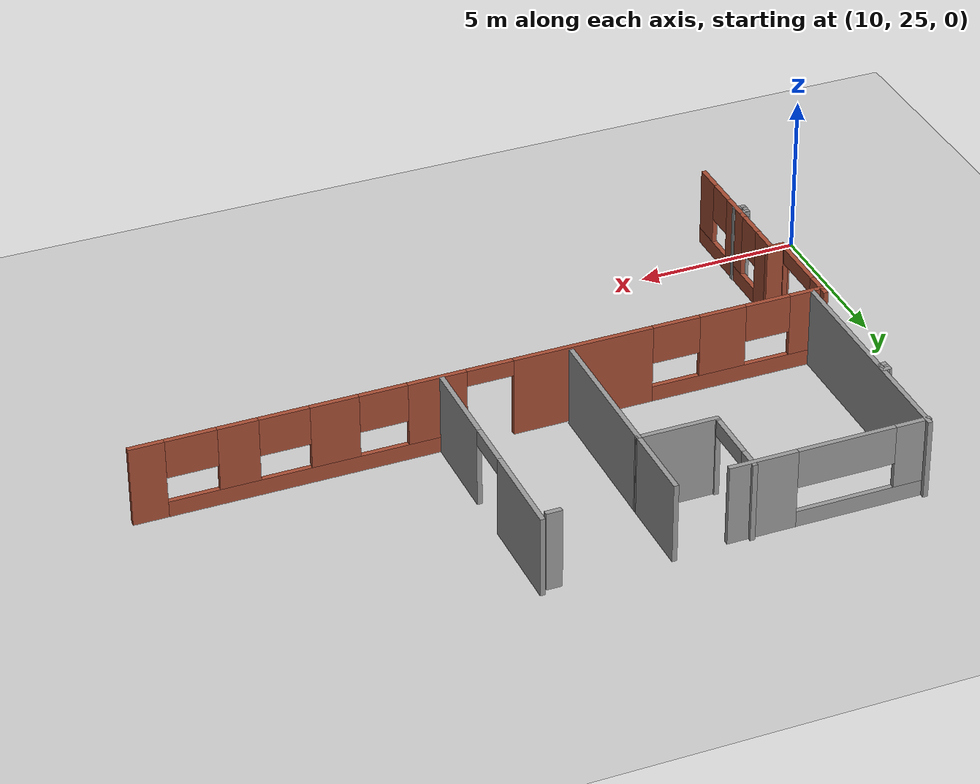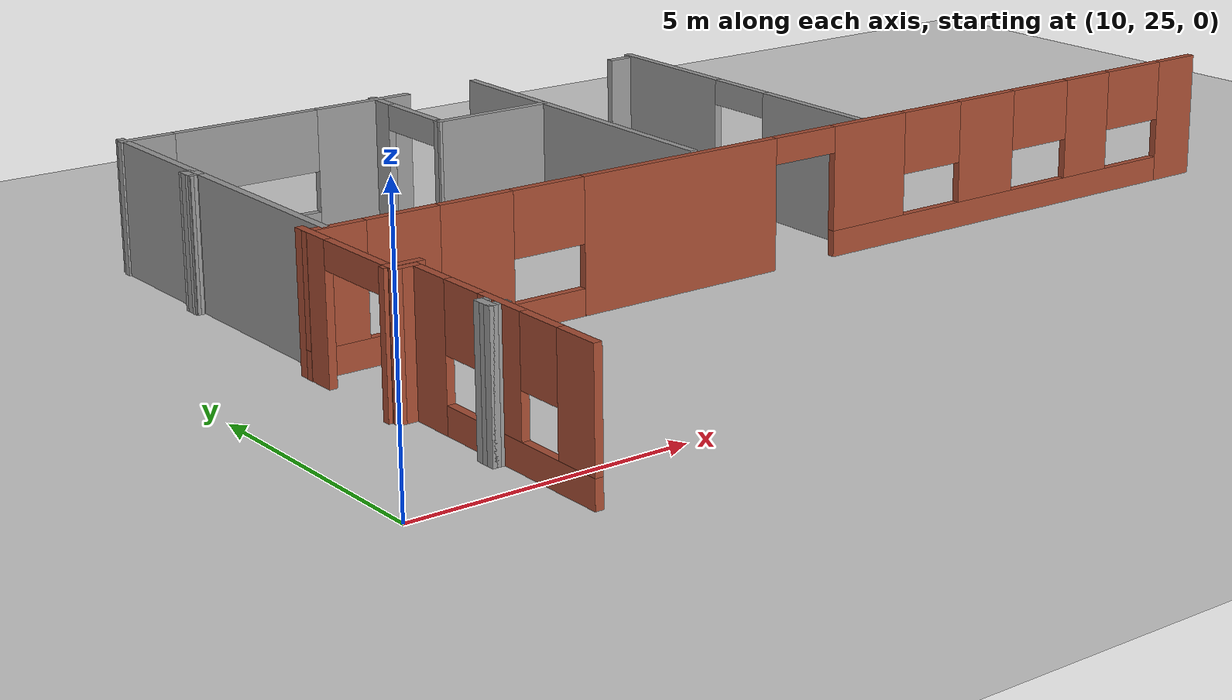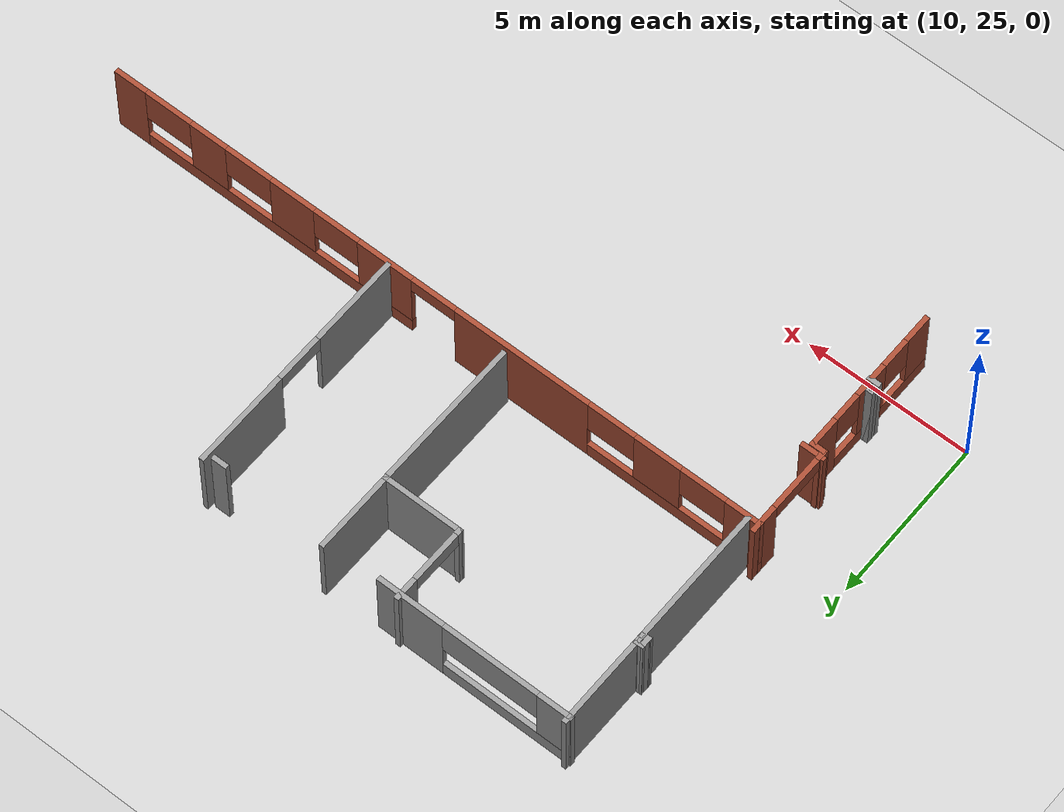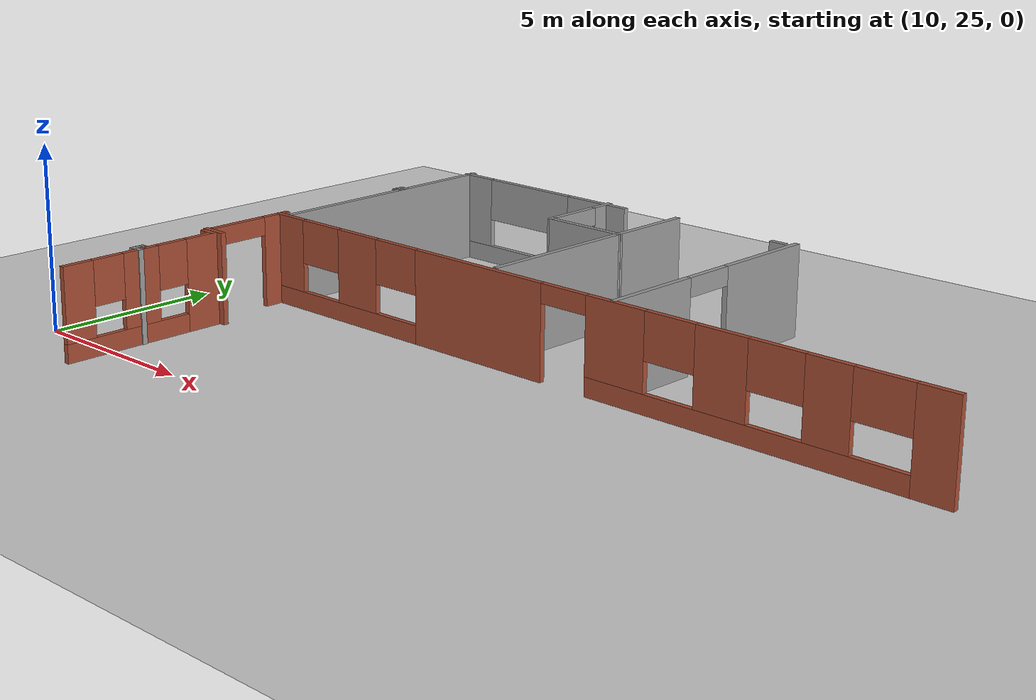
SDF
<sdf version="1.6">
 <world name="default">
  <model name="ground_plane">
   <static>1</static>
   <link name="link">
    <collision name="collision">
     <geometry><plane><normal>0 0 1</normal><size>100 100</size></plane></geometry>
     <surface><friction><ode><mu>100</mu><mu2>50</mu2></ode></friction></surface>
    </collision>
    <visual name="visual">
     <cast_shadows>0</cast_shadows>
     <geometry><plane><normal>0 0 1</normal><size>100 100</size></plane></geometry>
     <material>
      <script><uri>file://media/materials/scripts/gazebo.material</uri><name>Gazebo/Grey</name></script>
     </material>
    </visual>
   </link>
  </model>
  <model name="CVSSP">
   <pose>23.8714 24.094 0 0 -0 0</pose>
   <link name="Wall_17">
    <collision name="Wall_17_Collision">
     <geometry><box><size>7.25 0.15 2.5</size></box></geometry>
     <pose>0 0 1.25 0 -0 0</pose>
    </collision>
    <visual name="Wall_17_Visual">
     <pose>0 0 1.25 0 -0 0</pose>
     <geometry><box><size>7.25 0.15 2.5</size></box></geometry>
     <material>
      <script><uri>file://media/materials/scripts/gazebo.material</uri><name>Gazebo/Grey</name></script>
      <ambient>0.588235 0.588235 0.588235 1</ambient>
     </material>
    </visual>
    <pose>-11.4873 10.485 0 0 0 -1.5708</pose>
   </link>
   <link name="Wall_21">
    <pose>-6.21845 12.8269 0 0 0 -1.57055</pose>
    <visual name="Wall_21_Visual_0">
     <pose>-0.893143 0 1.25 0 -0 0</pose>
     <geometry><box><size>0.719046 0.15 2.5</size></box></geometry>
     <material>
      <script><uri>file://media/materials/scripts/gazebo.material</uri><name>Gazebo/Grey</name></script>
      <ambient>0.588235 0.588235 0.588235 1</ambient>
     </material>
    </visual>
    <collision name="Wall_21_Collision_0">
     <geometry><box><size>0.719046 0.15 2.5</size></box></geometry>
     <pose>-0.893143 0 1.25 0 -0 0</pose>
    </collision>
    <visual name="Wall_21_Visual_1">
     <pose>1.15058 0 1.25 0 -0 0</pose>
     <geometry><box><size>0.204165 0.15 2.5</size></box></geometry>
     <material>
      <script><uri>file://media/materials/scripts/gazebo.material</uri><name>Gazebo/Grey</name></script>
      <ambient>0.588235 0.588235 0.588235 1</ambient>
     </material>
    </visual>
    <collision name="Wall_21_Collision_1">
     <geometry><box><size>0.204165 0.15 2.5</size></box></geometry>
     <pose>1.15058 0 1.25 0 -0 0</pose>
    </collision>
    <visual name="Wall_21_Visual_2">
     <pose>0.257441 0 2.25 0 -0 0</pose>
     <geometry><box><size>1.58212 0.15 0.5</size></box></geometry>
     <material>
      <script><uri>file://media/materials/scripts/gazebo.material</uri><name>Gazebo/Grey</name></script>
      <ambient>0.588235 0.588235 0.588235 1</ambient>
     </material>
    </visual>
    <collision name="Wall_21_Collision_2">
     <geometry><box><size>1.58212 0.15 0.5</size></box></geometry>
     <pose>0.257441 0 2.25 0 -0 0</pose>
    </collision>
   </link>
   <link name="Wall_24">
    <collision name="Wall_24_Collision">
     <geometry><box><size>2.49412 0.15 2.5</size></box></geometry>
     <pose>0 0 1.25 0 -0 0</pose>
    </collision>
    <visual name="Wall_24_Visual">
     <pose>0 0 1.25 0 -0 0</pose>
     <geometry><box><size>2.49412 0.15 2.5</size></box></geometry>
     <material>
      <script><uri>file://media/materials/scripts/gazebo.material</uri><name>Gazebo/Grey</name></script>
      <ambient>0.588235 0.588235 0.588235 1</ambient>
     </material>
    </visual>
    <pose>-5.0461 11.6485 0 0 0 -0.000618</pose>
   </link>
   <link name="Wall_25">
    <collision name="Wall_25_Collision">
     <geometry><box><size>2.54698 0.15 2.5</size></box></geometry>
     <pose>0 0 1.25 0 -0 0</pose>
    </collision>
    <visual name="Wall_25_Visual">
     <pose>0 0 1.25 0 -0 0</pose>
     <geometry><box><size>2.54698 0.15 2.5</size></box></geometry>
     <material>
      <script><uri>file://media/materials/scripts/gazebo.material</uri><name>Gazebo/Grey</name></script>
      <ambient>0.588235 0.588235 0.588235 1</ambient>
     </material>
    </visual>
    <pose>-3.87405 12.8463 0 0 -0 1.5708</pose>
   </link>
   <link name="Wall_27">
    <collision name="Wall_27_Collision">
     <geometry><box><size>4.69046 0.15 2.5</size></box></geometry>
     <pose>0 0 1.25 0 -0 0</pose>
    </collision>
    <visual name="Wall_27_Visual">
     <pose>0 0 1.25 0 -0 0</pose>
     <geometry><box><size>4.69046 0.15 2.5</size></box></geometry>
     <material>
      <script><uri>file://media/materials/scripts/gazebo.material</uri><name>Gazebo/Grey</name></script>
      <ambient>0.588235 0.588235 0.588235 1</ambient>
     </material>
    </visual>
    <pose>-3.88025 9.37755 0 0 0 -1.57353</pose>
   </link>
   <link name="Wall_29">
    <pose>-0.023055 10.5087 0 0 0 -1.5708</pose>
    <visual name="Wall_29_Visual_0">
     <pose>-2.1277 0 1.25 0 -0 0</pose>
     <geometry><box><size>2.99461 0.15 2.5</size></box></geometry>
     <material>
      <script><uri>file://media/materials/scripts/gazebo.material</uri><name>Gazebo/Grey</name></script>
      <ambient>0.588235 0.588235 0.588235 1</ambient>
     </material>
    </visual>
    <collision name="Wall_29_Collision_0">
     <geometry><box><size>2.99461 0.15 2.5</size></box></geometry>
     <pose>-2.1277 0 1.25 0 -0 0</pose>
    </collision>
    <visual name="Wall_29_Visual_1">
     <pose>2.22714 0 1.25 0 -0 0</pose>
     <geometry><box><size>2.79571 0.15 2.5</size></box></geometry>
     <material>
      <script><uri>file://media/materials/scripts/gazebo.material</uri><name>Gazebo/Grey</name></script>
      <ambient>0.588235 0.588235 0.588235 1</ambient>
     </material>
    </visual>
    <collision name="Wall_29_Collision_1">
     <geometry><box><size>2.79571 0.15 2.5</size></box></geometry>
     <pose>2.22714 0 1.25 0 -0 0</pose>
    </collision>
    <visual name="Wall_29_Visual_2">
     <pose>0.099447 0 2.25 0 -0 0</pose>
     <geometry><box><size>1.45968 0.15 0.5</size></box></geometry>
     <material>
      <script><uri>file://media/materials/scripts/gazebo.material</uri><name>Gazebo/Grey</name></script>
      <ambient>0.588235 0.588235 0.588235 1</ambient>
     </material>
    </visual>
    <collision name="Wall_29_Collision_2">
     <geometry><box><size>1.45968 0.15 0.5</size></box></geometry>
     <pose>0.099447 0 2.25 0 -0 0</pose>
    </collision>
   </link>
   <link name="Wall_387">
    <pose>-11.8031 5.68021 0 0 -0 1.5708</pose>
    <visual name="Wall_387_Visual_0">
     <pose>-1.29725 0 1.25 0 -0 0</pose>
     <geometry><box><size>0.353915 0.15 2.5</size></box></geometry>
     <material>
      <script><uri>file://media/materials/scripts/gazebo.material</uri><name>Gazebo/Bricks</name></script>
      <ambient>1 1 1 1</ambient>
     </material>
    </visual>
    <collision name="Wall_387_Collision_0">
     <geometry><box><size>0.353915 0.15 2.5</size></box></geometry>
     <pose>-1.29725 0 1.25 0 -0 0</pose>
    </collision>
    <visual name="Wall_387_Visual_1">
     <pose>1.03174 0 1.25 0 -0 0</pose>
     <geometry><box><size>0.884924 0.15 2.5</size></box></geometry>
     <material>
      <script><uri>file://media/materials/scripts/gazebo.material</uri><name>Gazebo/Bricks</name></script>
      <ambient>1 1 1 1</ambient>
     </material>
    </visual>
    <collision name="Wall_387_Collision_1">
     <geometry><box><size>0.884924 0.15 2.5</size></box></geometry>
     <pose>1.03174 0 1.25 0 -0 0</pose>
    </collision>
    <visual name="Wall_387_Visual_2">
     <pose>-0.265504 0 2.25 0 -0 0</pose>
     <geometry><box><size>1.70957 0.15 0.5</size></box></geometry>
     <material>
      <script><uri>file://media/materials/scripts/gazebo.material</uri><name>Gazebo/Bricks</name></script>
      <ambient>1 1 1 1</ambient>
     </material>
    </visual>
    <collision name="Wall_387_Collision_2">
     <geometry><box><size>1.70957 0.15 0.5</size></box></geometry>
     <pose>-0.265504 0 2.25 0 -0 0</pose>
    </collision>
   </link>
   <link name="Wall_437">
    <collision name="Wall_437_Collision">
     <geometry><box><size>0.5 0.15 2.5</size></box></geometry>
     <pose>0 0 1.25 0 -0 0</pose>
    </collision>
    <visual name="Wall_437_Visual">
     <pose>0 0 1.25 0 -0 0</pose>
     <geometry><box><size>0.5 0.15 2.5</size></box></geometry>
     <material>
      <script><uri>file://media/materials/scripts/gazebo.material</uri><name>Gazebo/Bricks</name></script>
      <ambient>1 1 1 1</ambient>
     </material>
    </visual>
    <pose>-11.6281 4.28101 0 0 -0 0</pose>
   </link>
   <link name="Wall_438">
    <pose>-11.4531 1.98101 0 0 0 -1.5708</pose>
    <visual name="Wall_438_Visual_0">
     <pose>-1.88418 0 1.25 0 -0 0</pose>
     <geometry><box><size>0.981638 0.15 2.5</size></box></geometry>
     <material>
      <script><uri>file://media/materials/scripts/gazebo.material</uri><name>Gazebo/Bricks</name></script>
      <ambient>1 1 1 1</ambient>
     </material>
    </visual>
    <collision name="Wall_438_Collision_0">
     <geometry><box><size>0.981638 0.15 2.5</size></box></geometry>
     <pose>-1.88418 0 1.25 0 -0 0</pose>
    </collision>
    <visual name="Wall_438_Visual_1">
     <pose>0.490819 0 0.25 0 -0 0</pose>
     <geometry><box><size>3.76836 0.15 0.5</size></box></geometry>
     <material>
      <script><uri>file://media/materials/scripts/gazebo.material</uri><name>Gazebo/Bricks</name></script>
      <ambient>1 1 1 1</ambient>
     </material>
    </visual>
    <collision name="Wall_438_Collision_1">
     <geometry><box><size>3.76836 0.15 0.5</size></box></geometry>
     <pose>0.490819 0 0.25 0 -0 0</pose>
    </collision>
    <visual name="Wall_438_Visual_2">
     <pose>0.039676 0 1.5 0 -0 0</pose>
     <geometry><box><size>1.08359 0.15 2</size></box></geometry>
     <material>
      <script><uri>file://media/materials/scripts/gazebo.material</uri><name>Gazebo/Bricks</name></script>
      <ambient>1 1 1 1</ambient>
     </material>
    </visual>
    <collision name="Wall_438_Collision_2">
     <geometry><box><size>1.08359 0.15 2</size></box></geometry>
     <pose>0.039676 0 1.5 0 -0 0</pose>
    </collision>
    <visual name="Wall_438_Visual_3">
     <pose>1.93363 0 1.5 0 -0 0</pose>
     <geometry><box><size>0.882734 0.15 2</size></box></geometry>
     <material>
      <script><uri>file://media/materials/scripts/gazebo.material</uri><name>Gazebo/Bricks</name></script>
      <ambient>1 1 1 1</ambient>
     </material>
    </visual>
    <collision name="Wall_438_Collision_3">
     <geometry><box><size>0.882734 0.15 2</size></box></geometry>
     <pose>1.93363 0 1.5 0 -0 0</pose>
    </collision>
    <visual name="Wall_438_Visual_4">
     <pose>-0.94774 0 1.9 0 -0 0</pose>
     <geometry><box><size>0.891243 0.15 1.2</size></box></geometry>
     <material>
      <script><uri>file://media/materials/scripts/gazebo.material</uri><name>Gazebo/Bricks</name></script>
      <ambient>1 1 1 1</ambient>
     </material>
    </visual>
    <collision name="Wall_438_Collision_4">
     <geometry><box><size>0.891243 0.15 1.2</size></box></geometry>
     <pose>-0.94774 0 1.9 0 -0 0</pose>
    </collision>
    <visual name="Wall_438_Visual_5">
     <pose>1.03687 0 1.9 0 -0 0</pose>
     <geometry><box><size>0.910795 0.15 1.2</size></box></geometry>
     <material>
      <script><uri>file://media/materials/scripts/gazebo.material</uri><name>Gazebo/Bricks</name></script>
      <ambient>1 1 1 1</ambient>
     </material>
    </visual>
    <collision name="Wall_438_Collision_5">
     <geometry><box><size>0.910795 0.15 1.2</size></box></geometry>
     <pose>1.03687 0 1.9 0 -0 0</pose>
    </collision>
   </link>
   <link name="Wall_46">
    <pose>-1.40579 6.86917 0 0 -0 3.14155</pose>
    <visual name="Wall_46_Visual_0">
     <pose>-9.95927 0 1.25 0 -0 0</pose>
     <geometry><box><size>1.03804 0.15 2.5</size></box></geometry>
     <material>
      <script><uri>file://media/materials/scripts/gazebo.material</uri><name>Gazebo/Bricks</name></script>
      <ambient>1 1 1 1</ambient>
     </material>
    </visual>
    <collision name="Wall_46_Collision_0">
     <geometry><box><size>1.03804 0.15 2.5</size></box></geometry>
     <pose>-9.95927 0 1.25 0 -0 0</pose>
    </collision>
    <visual name="Wall_46_Visual_1">
     <pose>2.91124 0 1.25 0 -0 0</pose>
     <geometry><box><size>4.28444 0.15 2.5</size></box></geometry>
     <material>
      <script><uri>file://media/materials/scripts/gazebo.material</uri><name>Gazebo/Bricks</name></script>
      <ambient>1 1 1 1</ambient>
     </material>
    </visual>
    <collision name="Wall_46_Collision_1">
     <geometry><box><size>4.28444 0.15 2.5</size></box></geometry>
     <pose>2.91124 0 1.25 0 -0 0</pose>
    </collision>
    <visual name="Wall_46_Visual_2">
     <pose>-5.03718 0 0.25 0 -0 0</pose>
     <geometry><box><size>8.80612 0.15 0.5</size></box></geometry>
     <material>
      <script><uri>file://media/materials/scripts/gazebo.material</uri><name>Gazebo/Bricks</name></script>
      <ambient>1 1 1 1</ambient>
     </material>
    </visual>
    <collision name="Wall_46_Collision_2">
     <geometry><box><size>8.80612 0.15 0.5</size></box></geometry>
     <pose>-5.03718 0 0.25 0 -0 0</pose>
    </collision>
    <visual name="Wall_46_Visual_3">
     <pose>7.76588 0 0.25 0 -0 0</pose>
     <geometry><box><size>5.42482 0.15 0.5</size></box></geometry>
     <material>
      <script><uri>file://media/materials/scripts/gazebo.material</uri><name>Gazebo/Bricks</name></script>
      <ambient>1 1 1 1</ambient>
     </material>
    </visual>
    <collision name="Wall_46_Collision_3">
     <geometry><box><size>5.42482 0.15 0.5</size></box></geometry>
     <pose>7.76588 0 0.25 0 -0 0</pose>
    </collision>
    <visual name="Wall_46_Visual_4">
     <pose>-7.35036 0 1.5 0 -0 0</pose>
     <geometry><box><size>1.1891 0.15 2</size></box></geometry>
     <material>
      <script><uri>file://media/materials/scripts/gazebo.material</uri><name>Gazebo/Bricks</name></script>
      <ambient>1 1 1 1</ambient>
     </material>
    </visual>
    <collision name="Wall_46_Collision_4">
     <geometry><box><size>1.1891 0.15 2</size></box></geometry>
     <pose>-7.35036 0 1.5 0 -0 0</pose>
    </collision>
    <visual name="Wall_46_Visual_5">
     <pose>-4.55193 0 1.5 0 -0 0</pose>
     <geometry><box><size>1.43988 0.15 2</size></box></geometry>
     <material>
      <script><uri>file://media/materials/scripts/gazebo.material</uri><name>Gazebo/Bricks</name></script>
      <ambient>1 1 1 1</ambient>
     </material>
    </visual>
    <collision name="Wall_46_Collision_5">
     <geometry><box><size>1.43988 0.15 2</size></box></geometry>
     <pose>-4.55193 0 1.5 0 -0 0</pose>
    </collision>
    <visual name="Wall_46_Visual_6">
     <pose>-1.51388 0 1.5 0 -0 0</pose>
     <geometry><box><size>1.75953 0.15 2</size></box></geometry>
     <material>
      <script><uri>file://media/materials/scripts/gazebo.material</uri><name>Gazebo/Bricks</name></script>
      <ambient>1 1 1 1</ambient>
     </material>
    </visual>
    <collision name="Wall_46_Collision_6">
     <geometry><box><size>1.75953 0.15 2</size></box></geometry>
     <pose>-1.51388 0 1.5 0 -0 0</pose>
    </collision>
    <visual name="Wall_46_Visual_7">
     <pose>-1.51388 0 1.5 0 -0 0</pose>
     <geometry><box><size>1.75953 0.15 2</size></box></geometry>
     <material>
      <script><uri>file://media/materials/scripts/gazebo.material</uri><name>Gazebo/Bricks</name></script>
      <ambient>1 1 1 1</ambient>
     </material>
    </visual>
    <collision name="Wall_46_Collision_7">
     <geometry><box><size>1.75953 0.15 2</size></box></geometry>
     <pose>-1.51388 0 1.5 0 -0 0</pose>
    </collision>
    <visual name="Wall_46_Visual_8">
     <pose>7.24439 0 1.5 0 -0 0</pose>
     <geometry><box><size>1.44818 0.15 2</size></box></geometry>
     <material>
      <script><uri>file://media/materials/scripts/gazebo.material</uri><name>Gazebo/Bricks</name></script>
      <ambient>1 1 1 1</ambient>
     </material>
    </visual>
    <collision name="Wall_46_Collision_8">
     <geometry><box><size>1.44818 0.15 2</size></box></geometry>
     <pose>7.24439 0 1.5 0 -0 0</pose>
    </collision>
    <visual name="Wall_46_Visual_9">
     <pose>9.92244 0 1.5 0 -0 0</pose>
     <geometry><box><size>1.1117 0.15 2</size></box></geometry>
     <material>
      <script><uri>file://media/materials/scripts/gazebo.material</uri><name>Gazebo/Bricks</name></script>
      <ambient>1 1 1 1</ambient>
     </material>
    </visual>
    <collision name="Wall_46_Collision_9">
     <geometry><box><size>1.1117 0.15 2</size></box></geometry>
     <pose>9.92244 0 1.5 0 -0 0</pose>
    </collision>
    <visual name="Wall_46_Visual_10">
     <pose>-8.69258 0 1.9 0 -0 0</pose>
     <geometry><box><size>1.49533 0.15 1.2</size></box></geometry>
     <material>
      <script><uri>file://media/materials/scripts/gazebo.material</uri><name>Gazebo/Bricks</name></script>
      <ambient>1 1 1 1</ambient>
     </material>
    </visual>
    <collision name="Wall_46_Collision_10">
     <geometry><box><size>1.49533 0.15 1.2</size></box></geometry>
     <pose>-8.69258 0 1.9 0 -0 0</pose>
    </collision>
    <visual name="Wall_46_Visual_11">
     <pose>5.78688 0 1.9 0 -0 0</pose>
     <geometry><box><size>1.46684 0.15 1.2</size></box></geometry>
     <material>
      <script><uri>file://media/materials/scripts/gazebo.material</uri><name>Gazebo/Bricks</name></script>
      <ambient>1 1 1 1</ambient>
     </material>
    </visual>
    <collision name="Wall_46_Collision_11">
     <geometry><box><size>1.46684 0.15 1.2</size></box></geometry>
     <pose>5.78688 0 1.9 0 -0 0</pose>
    </collision>
    <visual name="Wall_46_Visual_12">
     <pose>-6.01384 0 1.9 0 -0 0</pose>
     <geometry><box><size>1.48394 0.15 1.2</size></box></geometry>
     <material>
      <script><uri>file://media/materials/scripts/gazebo.material</uri><name>Gazebo/Bricks</name></script>
      <ambient>1 1 1 1</ambient>
     </material>
    </visual>
    <collision name="Wall_46_Collision_12">
     <geometry><box><size>1.48394 0.15 1.2</size></box></geometry>
     <pose>-6.01384 0 1.9 0 -0 0</pose>
    </collision>
    <visual name="Wall_46_Visual_13">
     <pose>-3.11282 0 1.9 0 -0 0</pose>
     <geometry><box><size>1.43834 0.15 1.2</size></box></geometry>
     <material>
      <script><uri>file://media/materials/scripts/gazebo.material</uri><name>Gazebo/Bricks</name></script>
      <ambient>1 1 1 1</ambient>
     </material>
    </visual>
    <collision name="Wall_46_Collision_13">
     <geometry><box><size>1.43834 0.15 1.2</size></box></geometry>
     <pose>-3.11282 0 1.9 0 -0 0</pose>
    </collision>
    <visual name="Wall_46_Visual_14">
     <pose>8.66753 0 1.9 0 -0 0</pose>
     <geometry><box><size>1.39811 0.15 1.2</size></box></geometry>
     <material>
      <script><uri>file://media/materials/scripts/gazebo.material</uri><name>Gazebo/Bricks</name></script>
      <ambient>1 1 1 1</ambient>
     </material>
    </visual>
    <collision name="Wall_46_Collision_14">
     <geometry><box><size>1.39811 0.15 1.2</size></box></geometry>
     <pose>8.66753 0 1.9 0 -0 0</pose>
    </collision>
    <visual name="Wall_46_Visual_15">
     <pose>0.067453 0 2.25 0 -0 0</pose>
     <geometry><box><size>1.40314 0.15 0.5</size></box></geometry>
     <material>
      <script><uri>file://media/materials/scripts/gazebo.material</uri><name>Gazebo/Bricks</name></script>
      <ambient>1 1 1 1</ambient>
     </material>
    </visual>
    <collision name="Wall_46_Collision_15">
     <geometry><box><size>1.40314 0.15 0.5</size></box></geometry>
     <pose>0.067453 0 2.25 0 -0 0</pose>
    </collision>
    <visual name="Wall_46_Visual_16">
     <pose>0.067453 0 2.25 0 -0 0</pose>
     <geometry><box><size>1.40314 0.15 0.5</size></box></geometry>
     <material>
      <script><uri>file://media/materials/scripts/gazebo.material</uri><name>Gazebo/Bricks</name></script>
      <ambient>1 1 1 1</ambient>
     </material>
    </visual>
    <collision name="Wall_46_Collision_16">
     <geometry><box><size>1.40314 0.15 0.5</size></box></geometry>
     <pose>0.067453 0 2.25 0 -0 0</pose>
    </collision>
   </link>
   <link name="Wall_461">
    <collision name="Wall_461_Collision">
     <geometry><box><size>0.743141 0.15 2.5</size></box></geometry>
     <pose>0 0 1.25 0 -0 0</pose>
    </collision>
    <visual name="Wall_461_Visual">
     <pose>0 0 1.25 0 -0 0</pose>
     <geometry><box><size>0.743141 0.15 2.5</size></box></geometry>
     <material>
      <script><uri>file://media/materials/scripts/gazebo.material</uri><name>Gazebo/Bricks</name></script>
      <ambient>1 1 1 1</ambient>
     </material>
    </visual>
    <pose>-11.5857 4.44568 0 0 -0 0</pose>
   </link>
   <link name="Wall_621">
    <collision name="Wall_621_Collision">
     <geometry><box><size>0.479611 0.15 2.5</size></box></geometry>
     <pose>0 0 1.25 0 -0 0</pose>
    </collision>
    <visual name="Wall_621_Visual">
     <pose>0 0 1.25 0 -0 0</pose>
     <geometry><box><size>0.479611 0.15 2.5</size></box></geometry>
     <material>
      <script><uri>file://media/materials/scripts/gazebo.material</uri><name>Gazebo/Grey</name></script>
      <ambient>1 1 1 1</ambient>
     </material>
    </visual>
    <pose>-0.425949 13.8861 0 0 -0 3.14159</pose>
   </link>
   <link name="Wall_625">
    <pose>-8.55211 13.8979 0 0 -0 3.14159</pose>
    <visual name="Wall_625_Visual_0">
     <pose>-2.01383 0 1.25 0 -0 0</pose>
     <geometry><box><size>2.06931 0.15 2.5</size></box></geometry>
     <material>
      <script><uri>file://media/materials/scripts/gazebo.material</uri><name>Gazebo/Grey</name></script>
      <ambient>1 1 1 1</ambient>
     </material>
    </visual>
    <collision name="Wall_625_Collision_0">
     <geometry><box><size>2.06931 0.15 2.5</size></box></geometry>
     <pose>-2.01383 0 1.25 0 -0 0</pose>
    </collision>
    <visual name="Wall_625_Visual_1">
     <pose>1.03465 0 0.25 0 -0 0</pose>
     <geometry><box><size>4.02766 0.15 0.5</size></box></geometry>
     <material>
      <script><uri>file://media/materials/scripts/gazebo.material</uri><name>Gazebo/Grey</name></script>
      <ambient>1 1 1 1</ambient>
     </material>
    </visual>
    <collision name="Wall_625_Collision_1">
     <geometry><box><size>4.02766 0.15 0.5</size></box></geometry>
     <pose>1.03465 0 0.25 0 -0 0</pose>
    </collision>
    <visual name="Wall_625_Visual_2">
     <pose>2.51124 0 1.5 0 -0 0</pose>
     <geometry><box><size>1.07449 0.15 2</size></box></geometry>
     <material>
      <script><uri>file://media/materials/scripts/gazebo.material</uri><name>Gazebo/Grey</name></script>
      <ambient>1 1 1 1</ambient>
     </material>
    </visual>
    <collision name="Wall_625_Collision_2">
     <geometry><box><size>1.07449 0.15 2</size></box></geometry>
     <pose>2.51124 0 1.5 0 -0 0</pose>
    </collision>
    <visual name="Wall_625_Visual_3">
     <pose>0.497408 0 1.9 0 -0 0</pose>
     <geometry><box><size>2.95317 0.15 1.2</size></box></geometry>
     <material>
      <script><uri>file://media/materials/scripts/gazebo.material</uri><name>Gazebo/Grey</name></script>
      <ambient>1 1 1 1</ambient>
     </material>
    </visual>
    <collision name="Wall_625_Collision_3">
     <geometry><box><size>2.95317 0.15 1.2</size></box></geometry>
     <pose>0.497408 0 1.9 0 -0 0</pose>
    </collision>
   </link>
   <link name="Wall_626">
    <collision name="Wall_626_Collision">
     <geometry><box><size>0.15 0.15 2.5</size></box></geometry>
     <pose>0 0 1.25 0 -0 0</pose>
    </collision>
    <visual name="Wall_626_Visual">
     <pose>0 0 1.25 0 -0 0</pose>
     <geometry><box><size>0.15 0.15 2.5</size></box></geometry>
     <material>
      <script><uri>file://media/materials/scripts/gazebo.material</uri><name>Gazebo/Grey</name></script>
      <ambient>1 1 1 1</ambient>
     </material>
    </visual>
    <pose>-11.5256 13.8979 0 0 -0 0</pose>
   </link>
   <link name="Wall_692">
    <collision name="Wall_692_Collision">
     <geometry><box><size>0.385736 0.15 2.5</size></box></geometry>
     <pose>0 0 1.25 0 -0 0</pose>
    </collision>
    <visual name="Wall_692_Visual">
     <pose>0 0 1.25 0 -0 0</pose>
     <geometry><box><size>0.385736 0.15 2.5</size></box></geometry>
     <material>
      <script><uri>file://media/materials/scripts/gazebo.material</uri><name>Gazebo/Grey</name></script>
      <ambient>1 1 1 1</ambient>
     </material>
    </visual>
    <pose>-11.6564 11.1743 0 0 -0 1.5708</pose>
   </link>
   <link name="Wall_693">
    <collision name="Wall_693_Collision">
     <geometry><box><size>0.302277 0.15 2.5</size></box></geometry>
     <pose>0 0 1.25 0 -0 0</pose>
    </collision>
    <visual name="Wall_693_Visual">
     <pose>0 0 1.25 0 -0 0</pose>
     <geometry><box><size>0.302277 0.15 2.5</size></box></geometry>
     <material>
      <script><uri>file://media/materials/scripts/gazebo.material</uri><name>Gazebo/Grey</name></script>
      <ambient>1 1 1 1</ambient>
     </material>
    </visual>
    <pose>-11.5804 11.296 0 0 -0 0.049958</pose>
   </link>
   <link name="Wall_694">
    <collision name="Wall_694_Collision">
     <geometry><box><size>0.370527 0.15 2.5</size></box></geometry>
     <pose>0 0 1.25 0 -0 0</pose>
    </collision>
    <visual name="Wall_694_Visual">
     <pose>0 0 1.25 0 -0 0</pose>
     <geometry><box><size>0.370527 0.15 2.5</size></box></geometry>
     <material>
      <script><uri>file://media/materials/scripts/gazebo.material</uri><name>Gazebo/Grey</name></script>
      <ambient>1 1 1 1</ambient>
     </material>
    </visual>
    <pose>-11.4967 11.1895 0 0 0 -1.5708</pose>
   </link>
   <link name="Wall_695">
    <collision name="Wall_695_Collision">
     <geometry><box><size>0.303789 0.15 2.5</size></box></geometry>
     <pose>0 0 1.25 0 -0 0</pose>
    </collision>
    <visual name="Wall_695_Visual">
     <pose>0 0 1.25 0 -0 0</pose>
     <geometry><box><size>0.303789 0.15 2.5</size></box></geometry>
     <material>
      <script><uri>file://media/materials/scripts/gazebo.material</uri><name>Gazebo/Grey</name></script>
      <ambient>1 1 1 1</ambient>
     </material>
    </visual>
    <pose>-11.5804 11.0678 0 0 0 -2.9927</pose>
   </link>
   <link name="Wall_718">
    <collision name="Wall_718_Collision">
     <geometry><box><size>0.341762 0.15 2.5</size></box></geometry>
     <pose>0 0 1.25 0 -0 0</pose>
    </collision>
    <visual name="Wall_718_Visual">
     <pose>0 0 1.25 0 -0 0</pose>
     <geometry><box><size>0.341762 0.15 2.5</size></box></geometry>
     <material>
      <script><uri>file://media/materials/scripts/gazebo.material</uri><name>Gazebo/Grey</name></script>
      <ambient>1 1 1 1</ambient>
     </material>
    </visual>
    <pose>-11.5709 2.18477 0 0 -0 3.14159</pose>
   </link>
   <link name="Wall_719">
    <collision name="Wall_719_Collision">
     <geometry><box><size>0.4145 0.15 2.5</size></box></geometry>
     <pose>0 0 1.25 0 -0 0</pose>
    </collision>
    <visual name="Wall_719_Visual">
     <pose>0 0 1.25 0 -0 0</pose>
     <geometry><box><size>0.4145 0.15 2.5</size></box></geometry>
     <material>
      <script><uri>file://media/materials/scripts/gazebo.material</uri><name>Gazebo/Grey</name></script>
      <ambient>1 1 1 1</ambient>
     </material>
    </visual>
    <pose>-11.6667 2.05252 0 0 0 -1.5708</pose>
   </link>
   <link name="Wall_720">
    <collision name="Wall_720_Collision">
     <geometry><box><size>0.394752 0.15 2.5</size></box></geometry>
     <pose>0 0 1.25 0 -0 0</pose>
    </collision>
    <visual name="Wall_720_Visual">
     <pose>0 0 1.25 0 -0 0</pose>
     <geometry><box><size>0.394752 0.15 2.5</size></box></geometry>
     <material>
      <script><uri>file://media/materials/scripts/gazebo.material</uri><name>Gazebo/Grey</name></script>
      <ambient>1 1 1 1</ambient>
     </material>
    </visual>
    <pose>-11.5444 1.92027 0 0 -0 0</pose>
   </link>
   <static>1</static>
  </model>
 </world>
</sdf>
